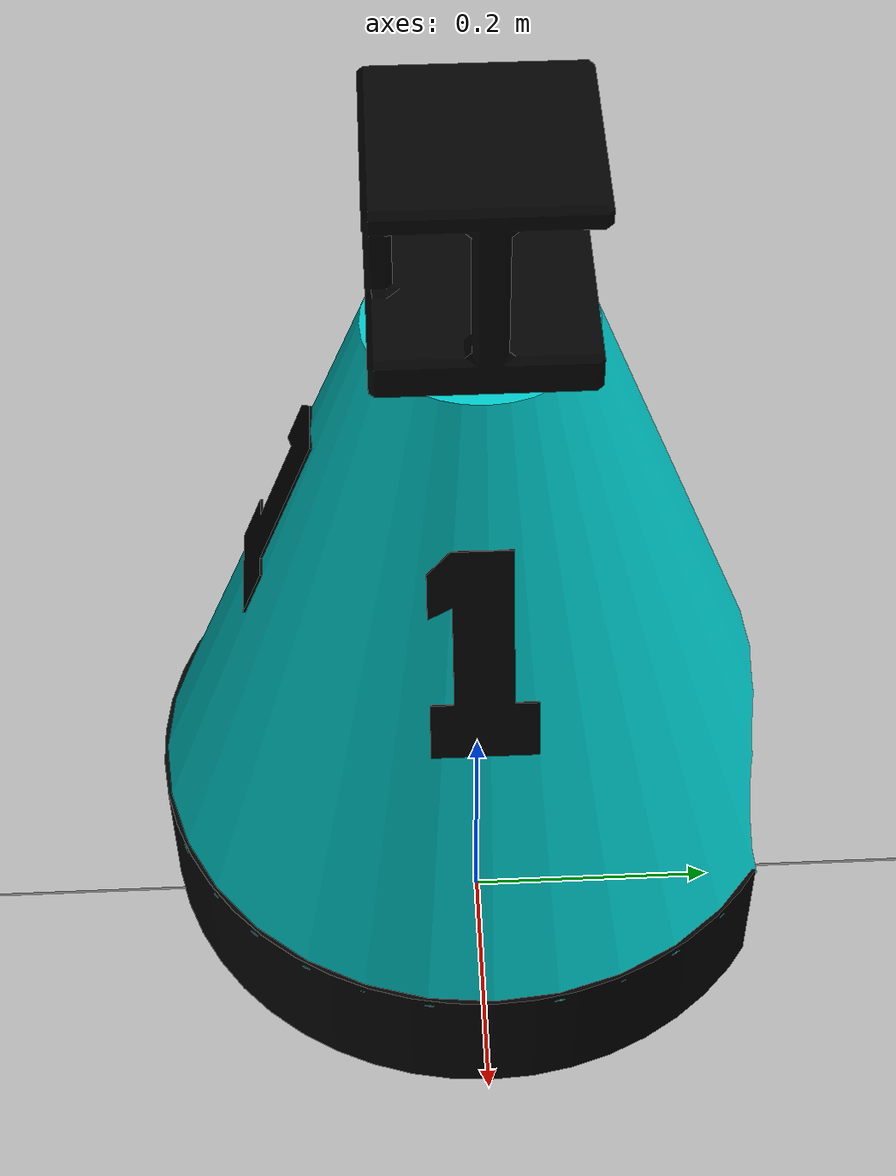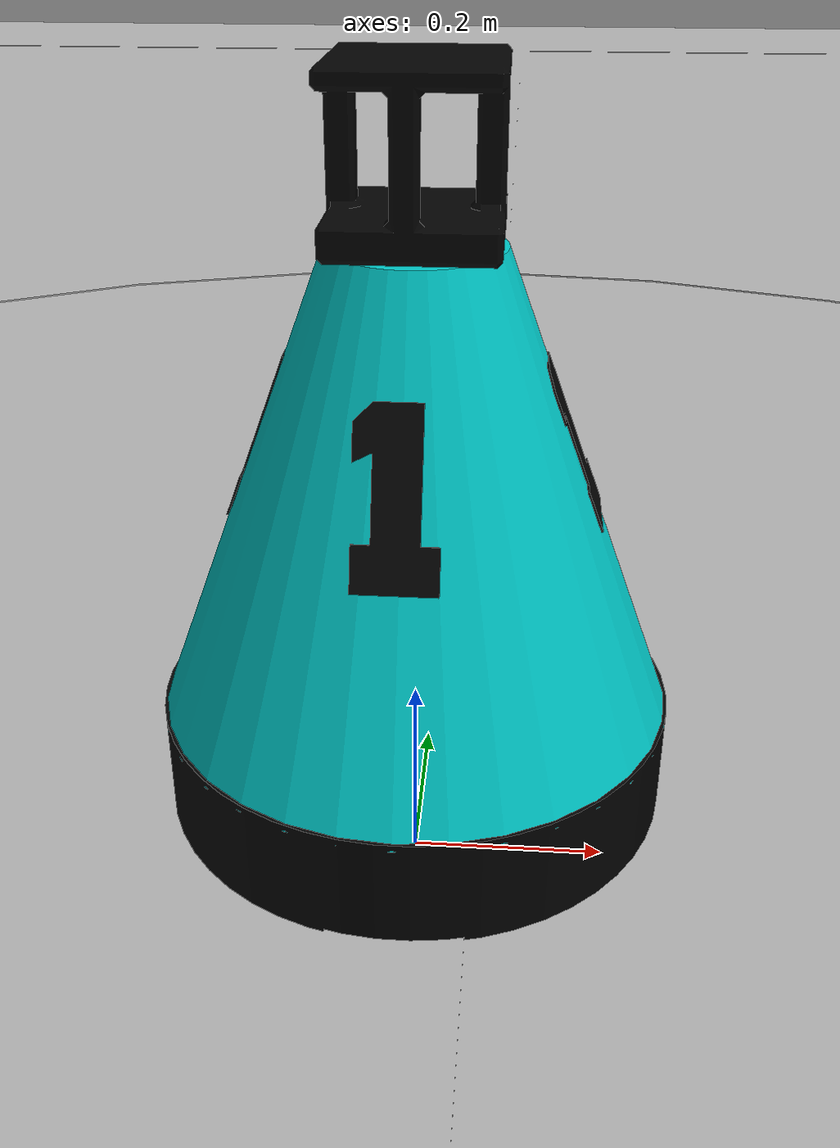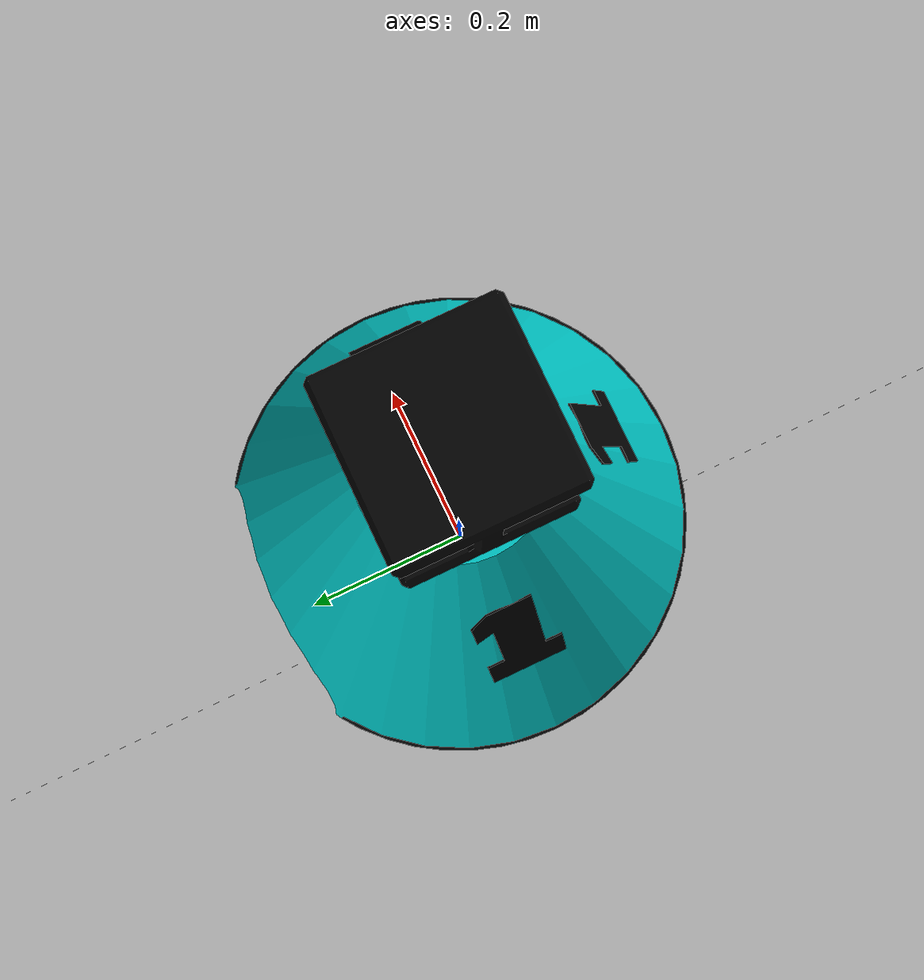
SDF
<?xml version="1.0" ?>
<sdf version="1.5">
  <world name="default">
    <!-- A global light source -->
    <include>
      <uri>model://sun</uri>
    </include>
   <include>
      <uri>model://sun</uri>
    </include>
   <include>
      <uri>model://sun</uri>
    </include>
    <!-- Game field, including ref box table
    for reference, the two goalies, line markings
    and stoppers. -->

     <physics type='ode'>
      <max_step_size>0.03125</max_step_size>
      <real_time_update_rate>32</real_time_update_rate>
      <gravity>0 0 -9.8</gravity>
    </physics>

    <include>
      <uri>model://msl_official_field</uri>
    </include>
    <!-- Game ball, placed in the center of the
    field. -->
    <include>
      <uri>model://robocup_msl_ball</uri>
    </include>

    <!-- Testing robot-->
    <include>
      <uri>model://minhoteam_msl_robot</uri>
      <name>minho_robot_1</name>
    </include>

    <plugin filename="libminho_world.so" name="minho_world">
        <model model_id="0">model://robocup_msl_ball</model>
        <model model_id="1">model://minhoteam_msl_robot</model>
        <model model_id="2">model://other_msl_robot</model>
    </plugin>
  </world>
</sdf>

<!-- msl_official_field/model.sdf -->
<sdf version='1.6'>
  <model name='MSL_Official_Field'>
    <link name='link_0'>
      <pose frame=''>0 -1.05 0 0 -0 0</pose>
      <inertial>
        <mass>1</mass>
        <inertia>
          <ixx>0.166667</ixx>
          <ixy>0</ixy>
          <ixz>0</ixz>
          <iyy>0.166667</iyy>
          <iyz>0</iyz>
          <izz>0.166667</izz>
        </inertia>
      </inertial>
      <visual name='visual'>
        <pose frame=''>0 0 0 0 -0 0</pose>
        <geometry>
          <mesh>
            <uri>model://msl_official_field/meshes/msl_field_visual.dae</uri>
            <scale>1 1 1</scale>
          </mesh>
        </geometry>
        <cast_shadows>1</cast_shadows>
        <transparency>0</transparency>
      </visual>
      <collision name='collision'>
        <laser_retro>0</laser_retro>
        <max_contacts>10</max_contacts>
        <pose frame=''>0 0 0 0 -0 0</pose>
        <geometry>
          <mesh>
            <uri>model://msl_official_field/meshes/msl_field_collision.dae</uri>
          </mesh>
        </geometry>
        <surface>
          <friction>
            <ode>
              <mu>100</mu>
              <mu2>50</mu2>
            </ode>
          </friction>
        </surface>
      </collision>
    </link>
    <static>1</static>
    <allow_auto_disable>1</allow_auto_disable>
  </model>
</sdf>

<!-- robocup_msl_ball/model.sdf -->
<sdf version="1.5">
  <model name="RoboCup MSL Ball">
    <static>false</static>
    <link name="ball">
        <inertial>
          <mass>0.41</mass>
          <inertia>
            <ixx>3.2e-03</ixx>
            <iyy>3.2e-03</iyy>
            <izz>3.2e-03</izz>
            <ixy>0</ixy>
            <ixz>0</ixz>
            <iyz>0</iyz>
          </inertia>
        </inertial>
      <collision name="collision">
        <geometry>
          <sphere>
            <radius>0.11</radius>
          </sphere>
        </geometry>
        <surface>
            <bounce>
              <restitution_coefficient>0.8</restitution_coefficient>
              <threshold>0.01</threshold>
            </bounce>
            <friction>
              <ode>
                <mu>0.1</mu>
                <mu2>0.1</mu2>
              </ode>
            </friction>
            <contact>
              <ode>
                <max_vel>30</max_vel>
              </ode>
            </contact>
          </surface>
      </collision>
      <visual name="visual">
        <geometry>
            <sphere>
            <radius>0.11</radius>
          </sphere>
         </geometry>
      </visual>

      <velocity_decay>
        <linear>0.00001</linear>
        <angular>0.0005</angular>
      </velocity_decay>
      <self_collide>false</self_collide>
      <gravity>true</gravity>
    </link>
  </model>
</sdf>

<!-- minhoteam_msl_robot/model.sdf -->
<sdf version="1.5">
  <model name="minho_robot">
    <static>false</static>
    <link name="base">
       <pose>0 0 0.01 0 0 1.57</pose>
        <inertial>
        <mass>31</mass>
            <inertia>
               <ixx>100</ixx>
               <ixy>0</ixy>
               <ixz>0</ixz>
               <iyy>100</iyy>
               <iyz>0</iyz>
               <izz>2.86</izz>
           </inertia>
        </inertial>
      <collision name="collision_base">
        <geometry>
          <mesh>
            <scale>1 1 1</scale>
            <uri>model://minhoteam_msl_robot/meshes/base.stl</uri>
          </mesh>
        </geometry>
        <surface>
          <bounce>
            <restitution_coefficient>0</restitution_coefficient>
          </bounce>
          <friction>
              <ode>
                <mu>0.1</mu>
                <mu2>0.1</mu2>
              </ode>
          </friction>
        </surface>
      </collision>
      <visual name="visual_base">
        <geometry>
          <mesh>
            <scale>1 1 1</scale>
            <uri>model://minhoteam_msl_robot/meshes/base.stl</uri>
          </mesh>
        </geometry>
        <material>
            <ambient>0.02 0.02 0.02 1.0</ambient>
            <diffuse>0.01 0.01 0.01 1.0</diffuse>
            <specular>0.4 0.4 0.4 1.0</specular>
        </material>
      </visual>
      <self_collide>true</self_collide>
      <gravity>true</gravity>
    </link>

    <link name="mid">
       <pose>0 0 0.008 0 0 1.57</pose>
      <collision name="collision_middle">
        <geometry>
          <mesh>
            <scale>1 1 1</scale>
            <uri>model://minhoteam_msl_robot/meshes/mid.stl</uri>
          </mesh>
        </geometry>
      </collision>
      <visual name="visual_middle">
        <geometry>
          <mesh>
            <scale>1 1 1</scale>
            <uri>model://minhoteam_msl_robot/meshes/mid.stl</uri>
          </mesh>
        </geometry>
            <material>
                <!-- CYAN -->
                <ambient>0.0 0.1 0.6 1.0</ambient>
                <diffuse>0.0 0.8 0.8 1.0</diffuse>
                <specular>0.5 0.5 0.5 1.0</specular>
            </material>
      </visual>
    <self_collide>true</self_collide>
    <gravity>true</gravity>
    </link>

    <link name="head">
      <collision name="collision_head">
      <pose>0 0 0.73 0 0 1.57</pose>
        <geometry>
          <box>
            <size>0.15 0.15 0.15</size>
          </box>
        </geometry>
      </collision>
      <visual name="visual_head">
      <pose>0 0 0.01 0 0 1.57</pose>
        <geometry>
          <mesh>
            <scale>1 1 1</scale>
            <uri>model://minhoteam_msl_robot/meshes/head.stl</uri>
          </mesh>
        </geometry>
        <material>
            <ambient>0.0 0.0 0.0 1.0</ambient>
            <diffuse>0.01 0.01 0.01 1.0</diffuse>
            <specular>0.5 0.5 0.5 1.0</specular>
        </material>
      </visual>
    <self_collide>true</self_collide>
      <gravity>true</gravity>
    </link>

    <link name="numberings">
    <pose>0 0 0.008 0 0 1.57</pose>
     <visual name="numbering_back">
      <pose>-0.172 0 0.4 1.21 0 -1.57</pose>
        <cast_shadows>false</cast_shadows>
        <geometry>
          <mesh>
            <scale>0.3 0.3 0.3</scale>
            <uri>model://minhoteam_msl_robot/meshes/nr_1.stl</uri>
          </mesh>
        </geometry>
        <material>
            <ambient>0.02 0.02 0.02 1.0</ambient>
            <diffuse>0.01 0.01 0.01 1.0</diffuse>
            <specular>0.4 0.4 0.4 1.0</specular>
        </material>
      </visual>
      <visual name="numbering_right">
      <pose>0 -0.172 0.4 1.21 0 0</pose>
        <cast_shadows>false</cast_shadows>
        <geometry>
          <mesh>
            <scale>0.3 0.3 0.3</scale>
            <uri>model://minhoteam_msl_robot/meshes/nr_1.stl</uri>
          </mesh>
        </geometry>
        <material>
            <ambient>0.02 0.02 0.02 1.0</ambient>
            <diffuse>0.01 0.01 0.01 1.0</diffuse>
            <specular>0.4 0.4 0.4 1.0</specular>
        </material>
      </visual>
      <visual name="numbering_left">
      <pose>0 0.172 0.4 1.21 0 3.14</pose>
        <cast_shadows>false</cast_shadows>
        <geometry>
          <mesh>
            <scale>0.3 0.3 0.3</scale>
            <uri>model://minhoteam_msl_robot/meshes/nr_1.stl</uri>
          </mesh>
        </geometry>
        <material>
            <ambient>0.02 0.02 0.02 1.0</ambient>
            <diffuse>0.01 0.01 0.01 1.0</diffuse>
            <specular>0.4 0.4 0.4 1.0</specular>
        </material>
      </visual>
    </link>

    <joint type="fixed" name="base_mid">
        <pose>0 0 0.2 0 0 0</pose>
        <child>mid</child>
        <parent>base</parent>
        <axis>
          <xyz>0 0 1</xyz>
        </axis>
    </joint>

    <joint type="fixed" name="mid_head">
        <pose>0 0 0.5 0 0 0</pose>
        <child>head</child>
        <parent>mid</parent>
        <axis>
          <xyz>0 0 1</xyz>
        </axis>
    </joint>

    <joint type="fixed" name="numbers">
        <pose>0 0 0.2 0 0 0</pose>
        <child>mid</child>
        <parent>numberings</parent>
        <axis>
          <xyz>1 1 1</xyz>
        </axis>
    </joint>

    <!-- Fake LIDAR for obstacle detection -->

    <!-- HARDWARE/WORLDMODEL PLUGIN -->
    <plugin filename="libminho_robot.so" name="minho_robot">
               <!-- ROBOT PARAMETERS -->
        <max_linear_velocity>2.5</max_linear_velocity>
        <max_angular_velocity>15.0</max_angular_velocity>
        <max_ball_velocity>8.0</max_ball_velocity>
        <ball_kick_angle>45.0</ball_kick_angle>
        <ball_model_name>RoboCup MSL Ball</ball_model_name>
        <vision_range_radius>6.0</vision_range_radius>
        <max_backwards_grip_vel>30</max_backwards_grip_vel>
        <max_rotation_grip_vel>50</max_rotation_grip_vel>
        <grip_decay>24</grip_decay>
        <accel>1</accel>
        <deccel>1</deccel>
               <!-- ROS NODE BOOT -->
        <ros_boot>
            <!-- COMS_NODE-->
            <node>
               <package>minho_team_ros</package>
               <name>coms_node</name>
               <flags>
                  <flag>-s</flag>
                  <flag>$ID</flag>
               </flags>
            </node>
            <!-- CONTROL_NODE -->
            <node>
               <package>minho_team_ros</package>
               <name>control_node</name>
               <flags>
                  <flag>-s</flag>
                  <flag>$ID</flag>
               </flags>
            </node>
            <!-- AI_NODE-->
            <node>
               <package>minho_team_ros</package>
               <name>ai_node</name>
               <flags>
                  <flag>-s</flag>
                  <flag>$ID</flag>
               </flags>
            </node>

        </ros_boot>
    </plugin>

  </model>
</sdf>
